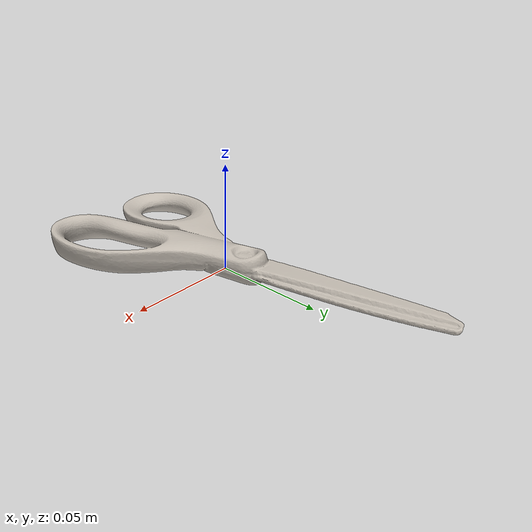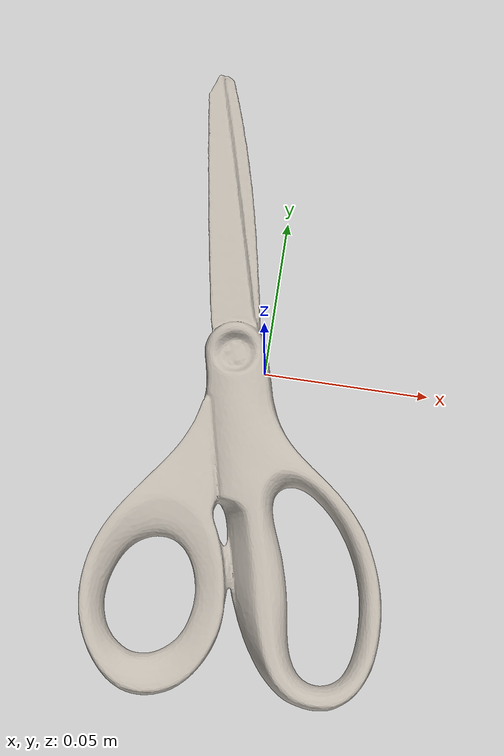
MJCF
<mujoco model="scissors">
  <default>
    <default class="visual">
      <geom group="1" type="mesh" contype="0" conaffinity="0"/>
    </default>
    <default class="collision">
      <geom group="0" type="mesh"/>
    </default>
  </default>
  <asset>
    <texture type="2d" name="scissors" file="scissors.png"/>
    <material name="scissors" texture="scissors" specular="0.4000000000000001" shininess="0.001"/>
    <mesh name="scissors" file="scissors.obj"/>
  </asset>
  <worldbody>
    <body>
	    <body name="object">
	      <geom material="scissors" mesh="scissors" class="visual"/>
	      <geom mesh="scissors" class="collision"/>
	    </body>
	      <site rgba="0 0 0 0" size="0.005" pos="0 0 -0.04" name="bottom_site" />
	      <site rgba="0 0 0 0" size="0.005" pos="0 0 0.04" name="top_site" />
	      <site rgba="0 0 0 0" size="0.005" pos="0.005 0.005 0" name="horizontal_radius_site" />
    </body>
  </worldbody>
</mujoco>
